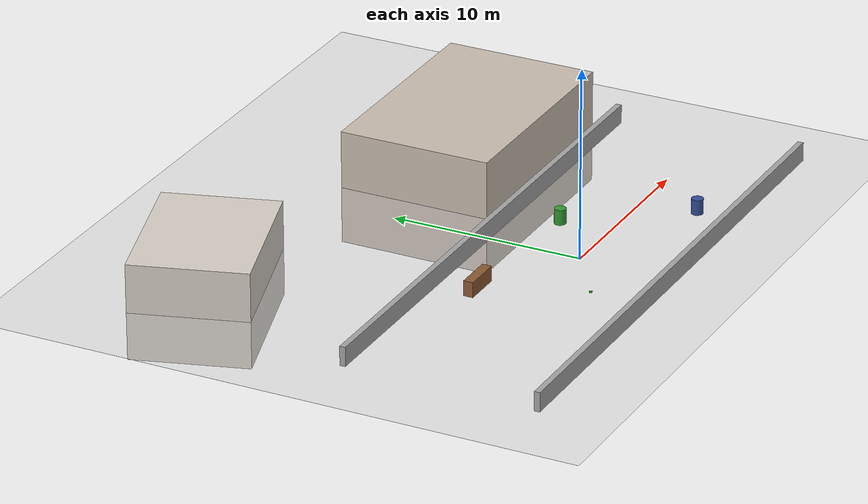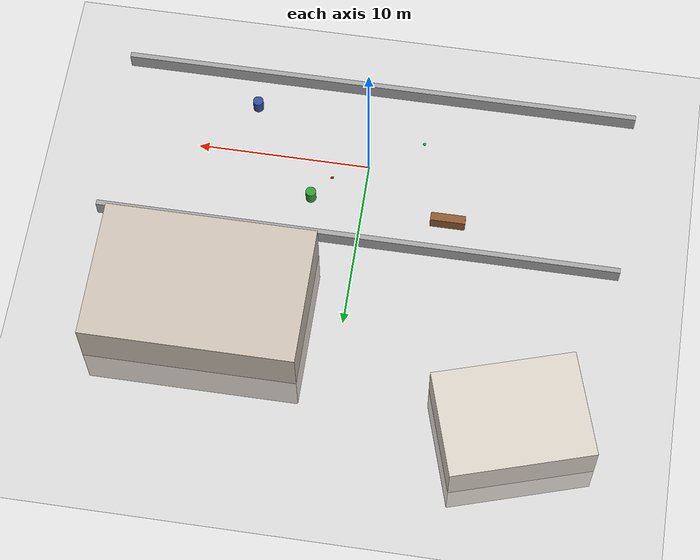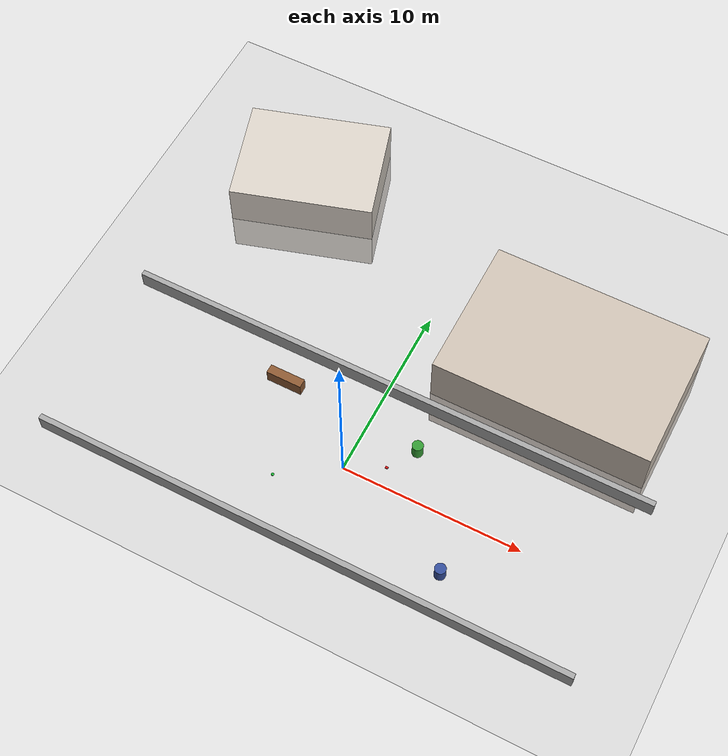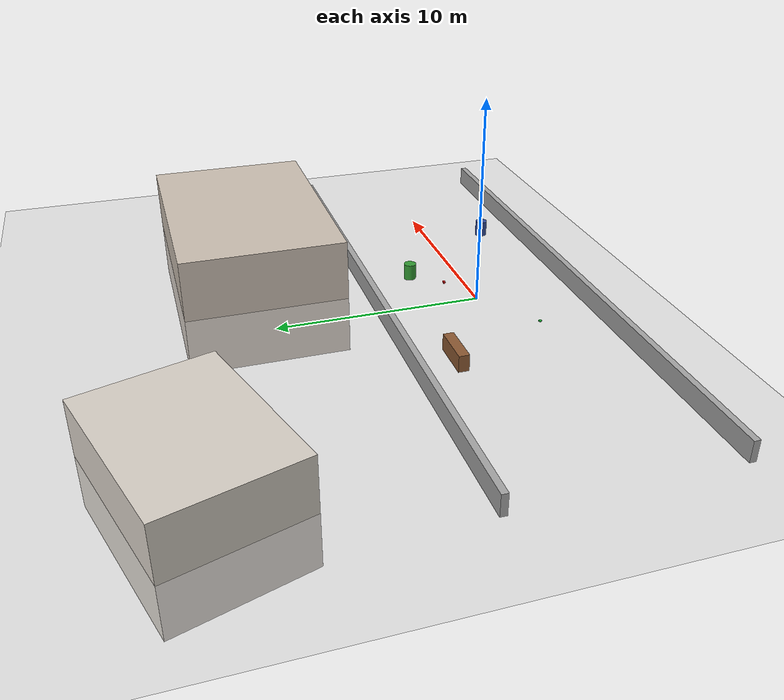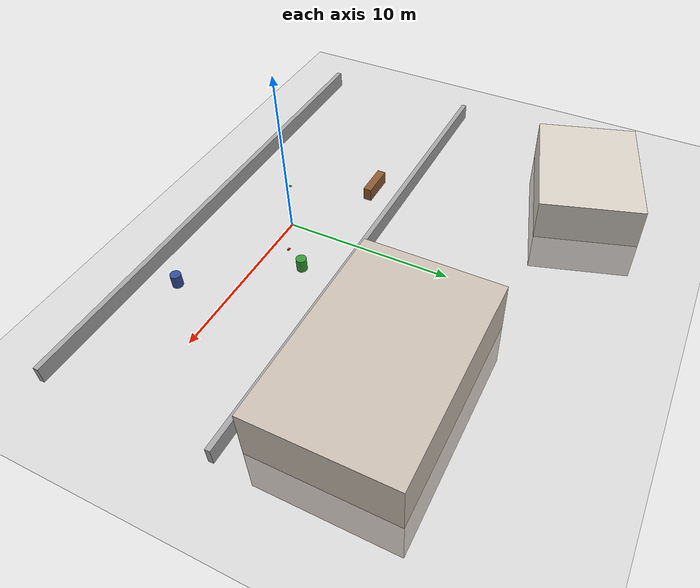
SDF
<?xml version="1.0" ?>
<sdf version="1.6">
  <world name="outdoor_campus">
    <!-- Physics -->
    <physics type="ode">
      <max_step_size>0.001</max_step_size>
      <real_time_factor>1.0</real_time_factor>
      <real_time_update_rate>1000</real_time_update_rate>
    </physics>

    <!-- Global light -->
    <include>
      <uri>model://sun</uri>
    </include>

    <!-- Ground plane -->
    <include>
      <uri>model://ground_plane</uri>
    </include>

    <!-- Campus environment: buildings, paths, trash bins, benches         -->

    <!-- Main building -->
    <model name="main_building">
      <static>true</static>
      <pose>8.0 10.0 0.0 0 0 0</pose>
      <link name="wall">
        <collision name="wall_collision">
          <geometry><box><size>12 8 6</size></box></geometry>
        </collision>
        <visual name="wall_visual">
          <geometry><box><size>12 8 6</size></box></geometry>
          <material><ambient>0.8 0.75 0.7 1.0</ambient></material>
        </visual>
      </link>
    </model>

    <!-- Side building -->
    <model name="side_building">
      <static>true</static>
      <pose>-10.0 15.0 0.0 0 0 0.3</pose>
      <link name="wall">
        <collision name="wall_collision">
          <geometry><box><size>8 6 5</size></box></geometry>
        </collision>
        <visual name="wall_visual">
          <geometry><box><size>8 6 5</size></box></geometry>
          <material><ambient>0.85 0.82 0.78 1.0</ambient></material>
        </visual>
      </link>
    </model>

    <!-- Corridor walls (low walls along pathway) -->
    <model name="corridor_wall_north">
      <static>true</static>
      <pose>0.0 5.0 0.5 0 0 0</pose>
      <link name="link">
        <collision name="collision">
          <geometry><box><size>30 0.3 1.0</size></box></geometry>
        </collision>
        <visual name="visual">
          <geometry><box><size>30 0.3 1.0</size></box></geometry>
          <material><ambient>0.65 0.65 0.65 1.0</ambient></material>
        </visual>
      </link>
    </model>

    <model name="corridor_wall_south">
      <static>true</static>
      <pose>0.0 -5.0 0.5 0 0 0</pose>
      <link name="link">
        <collision name="collision">
          <geometry><box><size>30 0.3 1.0</size></box></geometry>
        </collision>
        <visual name="visual">
          <geometry><box><size>30 0.3 1.0</size></box></geometry>
          <material><ambient>0.65 0.65 0.65 1.0</ambient></material>
        </visual>
      </link>
    </model>

    <!-- Trash bin 1 -->
    <model name="trash_bin_1">
      <static>true</static>
      <pose>3.0 2.5 0.5 0 0 0</pose>
      <link name="link">
        <collision name="collision">
          <geometry><cylinder><radius>0.3</radius><length>0.8</length></cylinder></geometry>
        </collision>
        <visual name="visual">
          <geometry><cylinder><radius>0.3</radius><length>0.8</length></cylinder></geometry>
          <material><ambient>0.2 0.6 0.2 1.0</ambient></material>
        </visual>
      </link>
    </model>

    <!-- Trash bin 2 -->
    <model name="trash_bin_2">
      <static>true</static>
      <pose>7.0 -3.0 0.5 0 0 0</pose>
      <link name="link">
        <collision name="collision">
          <geometry><cylinder><radius>0.3</radius><length>0.8</length></cylinder></geometry>
        </collision>
        <visual name="visual">
          <geometry><cylinder><radius>0.3</radius><length>0.8</length></cylinder></geometry>
          <material><ambient>0.2 0.3 0.6 1.0</ambient></material>
        </visual>
      </link>
    </model>

    <!-- Bench -->
    <model name="bench_1">
      <static>true</static>
      <pose>-5.0 3.0 0.4 0 0 0</pose>
      <link name="link">
        <collision name="collision">
          <geometry><box><size>2.0 0.5 0.8</size></box></geometry>
        </collision>
        <visual name="visual">
          <geometry><box><size>2.0 0.5 0.8</size></box></geometry>
          <material><ambient>0.55 0.35 0.2 1.0</ambient></material>
        </visual>
      </link>
    </model>

    <!-- Loose trash (simulated garbage) -->
    <model name="loose_trash_1">
      <static>true</static>
      <pose>2.0 1.0 0.1 0 0 0</pose>
      <link name="link">
        <collision name="collision">
          <geometry><box><size>0.15 0.1 0.08</size></box></geometry>
        </collision>
        <visual name="visual">
          <geometry><box><size>0.15 0.1 0.08</size></box></geometry>
          <material><ambient>0.9 0.1 0.1 1.0</ambient></material>
        </visual>
      </link>
    </model>

    <model name="loose_trash_2">
      <static>true</static>
      <pose>-3.0 -2.0 0.05 0 0 0.5</pose>
      <link name="link">
        <collision name="collision">
          <geometry><cylinder><radius>0.08</radius><length>0.04</length></cylinder></geometry>
        </collision>
        <visual name="visual">
          <geometry><cylinder><radius>0.08</radius><length>0.04</length></cylinder></geometry>
          <material><ambient>0.1 0.7 0.2 1.0</ambient></material>
        </visual>
      </link>
    </model>

  </world>
</sdf>
